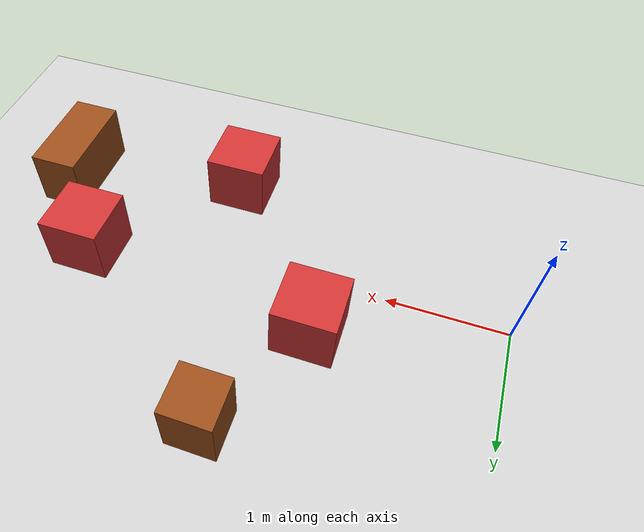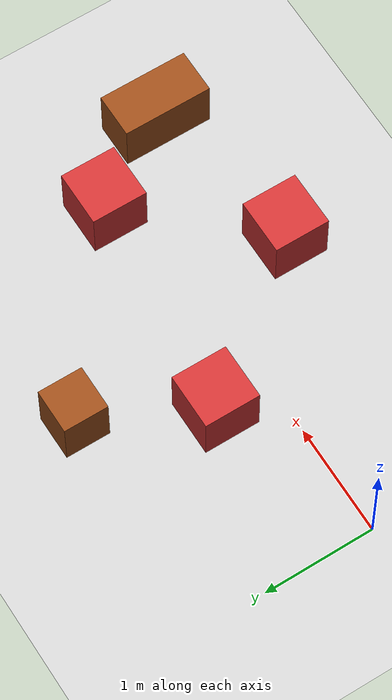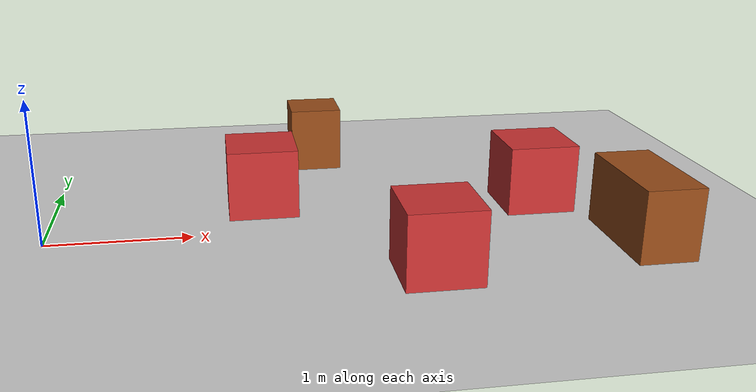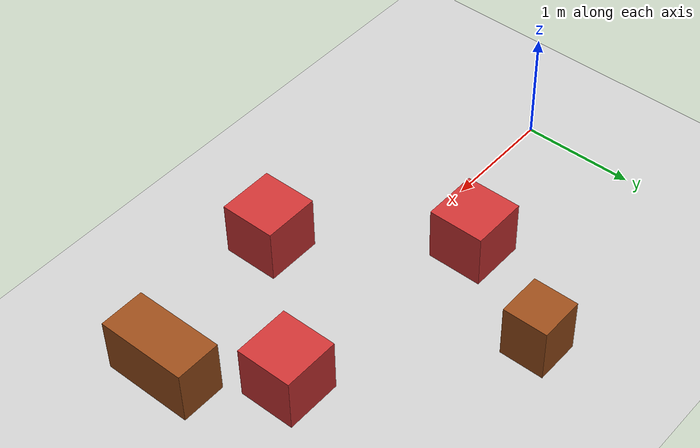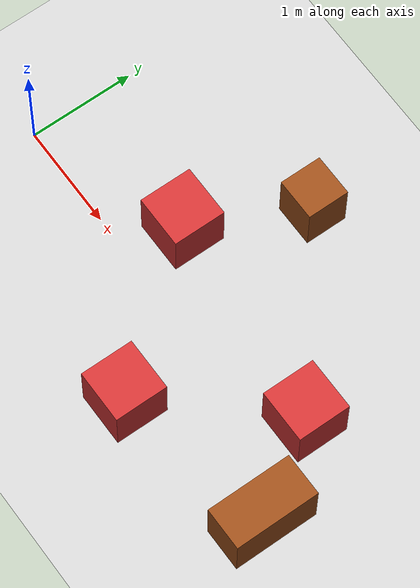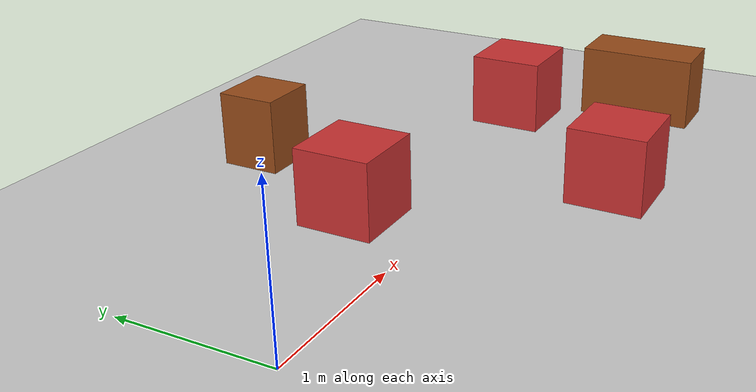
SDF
<?xml version="1.0" ?>
<!--
  OBS-3 Scenario: STATIC OBSTACLES
  Five fixed box obstacles placed between robot start (0,0) and goal (4,0).
  Tests basic path planning and smooth obstacle avoidance.
-->
<sdf version="1.6">
  <world name="static_obstacles">

    <physics type="ode">
      <real_time_update_rate>1000.0</real_time_update_rate>
      <max_step_size>0.001</max_step_size>
      <real_time_factor>1.0</real_time_factor>
    </physics>

    <include><uri>model://sun</uri></include>
    <include><uri>model://ground_plane</uri></include>

    <!-- Obstacle 1 — centre path blocker -->
    <model name="obstacle_1">
      <static>true</static>
      <pose>1.5 0.5 0.25 0 0 0</pose>
      <link name="link">
        <collision name="c">
          <geometry><box><size>0.5 0.5 0.5</size></box></geometry>
        </collision>
        <visual name="v">
          <geometry><box><size>0.5 0.5 0.5</size></box></geometry>
          <material><ambient>0.8 0.2 0.2 1</ambient></material>
        </visual>
      </link>
    </model>

    <!-- Obstacle 2 -->
    <model name="obstacle_2">
      <static>true</static>
      <pose>2.5 -0.8 0.25 0 0 0</pose>
      <link name="link">
        <collision name="c">
          <geometry><box><size>0.5 0.5 0.5</size></box></geometry>
        </collision>
        <visual name="v">
          <geometry><box><size>0.5 0.5 0.5</size></box></geometry>
          <material><ambient>0.8 0.2 0.2 1</ambient></material>
        </visual>
      </link>
    </model>

    <!-- Obstacle 3 -->
    <model name="obstacle_3">
      <static>true</static>
      <pose>3.5 0.3 0.25 0 0 0</pose>
      <link name="link">
        <collision name="c">
          <geometry><box><size>0.5 0.5 0.5</size></box></geometry>
        </collision>
        <visual name="v">
          <geometry><box><size>0.5 0.5 0.5</size></box></geometry>
          <material><ambient>0.8 0.2 0.2 1</ambient></material>
        </visual>
      </link>
    </model>

    <!-- Obstacle 4 — smaller block -->
    <model name="obstacle_4">
      <static>true</static>
      <pose>2.0 1.5 0.25 0 0 0</pose>
      <link name="link">
        <collision name="c">
          <geometry><box><size>0.4 0.4 0.5</size></box></geometry>
        </collision>
        <visual name="v">
          <geometry><box><size>0.4 0.4 0.5</size></box></geometry>
          <material><ambient>0.6 0.3 0.1 1</ambient></material>
        </visual>
      </link>
    </model>

    <!-- Obstacle 5 — elongated block -->
    <model name="obstacle_5">
      <static>true</static>
      <pose>4.0 -0.5 0.25 0 0 0</pose>
      <link name="link">
        <collision name="c">
          <geometry><box><size>0.4 0.8 0.5</size></box></geometry>
        </collision>
        <visual name="v">
          <geometry><box><size>0.4 0.8 0.5</size></box></geometry>
          <material><ambient>0.6 0.3 0.1 1</ambient></material>
        </visual>
      </link>
    </model>

  </world>
</sdf>
